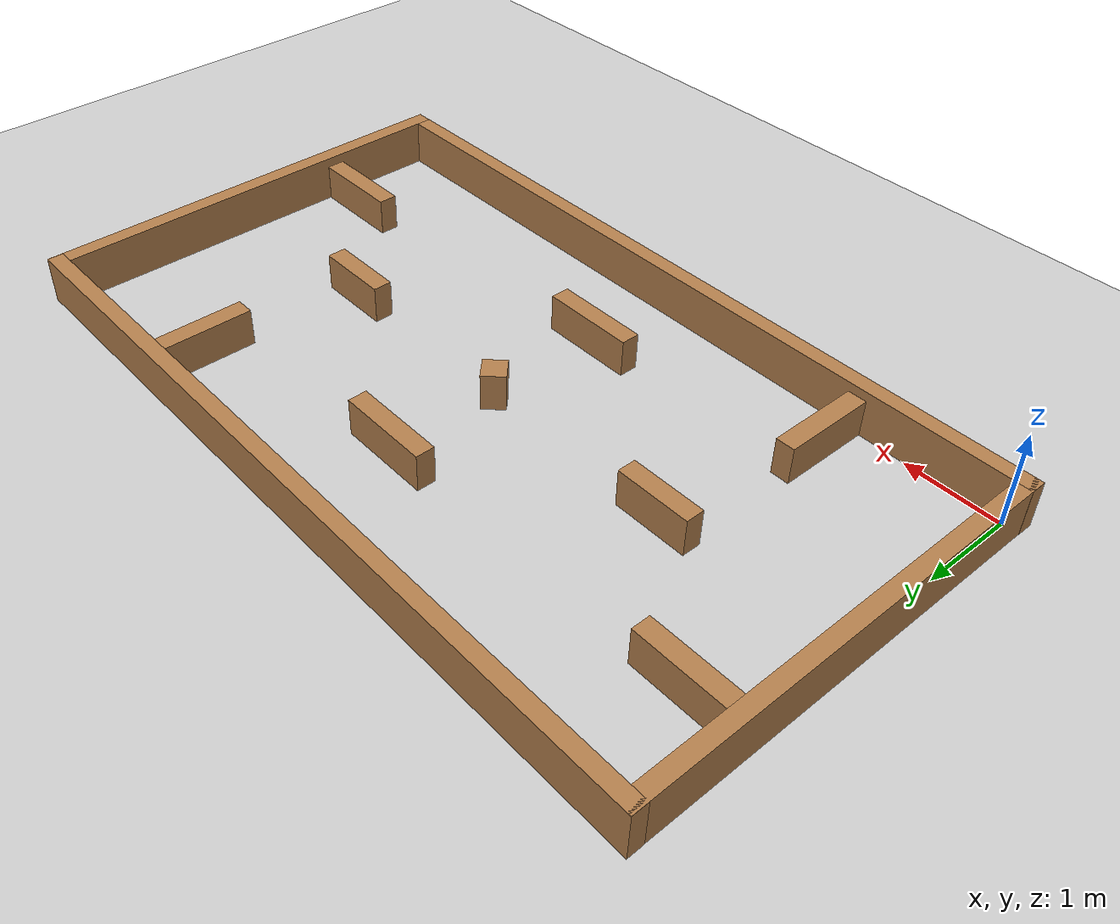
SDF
<sdf version='1.6'>
  <world name='default'>
    <!-- A global light source -->
    <include>
      <uri>model://sun</uri>
    </include>

    <!-- A ground plane -->
    <include>
      <uri>model://ground_plane</uri>
    </include>

    <physics type="ode">
      <real_time_update_rate>1000.0</real_time_update_rate>
      <max_step_size>0.003</max_step_size>
      <real_time_factor>1</real_time_factor>
      <ode>
        <solver>
          <type>quick</type>
          <iters>150</iters>
          <precon_iters>0</precon_iters>
          <sor>1.400000</sor>
          <use_dynamic_moi_rescaling>1</use_dynamic_moi_rescaling>
        </solver>
        <constraints>
          <cfm>0.00001</cfm>
          <erp>0.2</erp>
          <contact_max_correcting_vel>2000.000000</contact_max_correcting_vel>
          <contact_surface_layer>0.01000</contact_surface_layer>
        </constraints>
      </ode>
    </physics>

    <!-- Load world -->
    <include>
      <uri>model://ICRA2020_square</uri>
    </include>

    <scene>
      <ambient>0.4 0.4 0.4 1</ambient>
      <background>0.7 0.7 0.7 1</background>
      <shadows>true</shadows>
    </scene>

    <gui fullscreen='0'>
      <camera name='user_camera'>
        <pose>0.0 0.0 17.0 0 1.5708 0</pose>
        <view_controller>orbit</view_controller>
      </camera>
    </gui>
  </world>
</sdf>

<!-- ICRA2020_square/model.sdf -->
<sdf version='1.6'>
  <model name='turtlebot3_square'>
    <pose frame=''>0 0 0 0 -0 0</pose>
    <link name='Wall_0'>
      <collision name='Wall_0_Collision'>
        <geometry>
          <box>
            <size>8.42 0.17 0.5</size>
          </box>
        </geometry>
        <pose frame=''>0 0 0.25 0 -0 0</pose>
      </collision>
      <visual name='Wall_0_Visual'>
        <pose frame=''>0 0 0.25 0 -0 0</pose>
        <geometry>
          <box>
            <size>8.42 0.17 0.5</size>
          </box>
        </geometry>
        <material>
          <script>
            <uri>file://media/materials/scripts/gazebo.material</uri>
            <name>Gazebo/Wood</name>
          </script>
          <ambient>1 1 1 1</ambient>
        </material>
      </visual>
      <pose frame=''>4.04 4.5675 0 0 -0 0</pose>
    </link>
    <link name='Wall_2'>
      <collision name='Wall_2_Collision'>
        <geometry>
          <box>
            <size>4.82 0.17 0.5</size>
          </box>
        </geometry>
        <pose frame=''>0 0 0.25 0 -0 0</pose>
      </collision>
      <visual name='Wall_2_Visual'>
        <pose frame=''>0 0 0.25 0 -0 0</pose>
        <geometry>
          <box>
            <size>4.82 0.17 0.5</size>
          </box>
        </geometry>
        <material>
          <script>
            <uri>file://media/materials/scripts/gazebo.material</uri>
            <name>Gazebo/Wood</name>
          </script>
          <ambient>1 1 1 1</ambient>
        </material>
      </visual>
      <pose frame=''>-0.0825 2.24 0 0 0 -1.5708</pose>
    </link>
    <link name='Wall_3'>
      <collision name='Wall_3_Collision'>
        <geometry>
          <box>
            <size>8.42 0.17 0.5</size>
          </box>
        </geometry>
        <pose frame=''>0 0 0.25 0 -0 0</pose>
      </collision>
      <visual name='Wall_3_Visual'>
        <pose frame=''>0 0 0.25 0 -0 0</pose>
        <geometry>
          <box>
            <size>8.42 0.17 0.5</size>
          </box>
        </geometry>
        <material>
          <script>
            <uri>file://media/materials/scripts/gazebo.material</uri>
            <name>Gazebo/Wood</name>
          </script>
          <ambient>1 1 1 1</ambient>
        </material>
      </visual>
      <pose frame=''>4.04 -0.085 0 0 -0 0</pose>
    </link>
    <link name='Wall_4'>
      <collision name='Wall_4_Collision'>
        <geometry>
          <box>
            <size>4.82 0.17 0.5</size>
          </box>
        </geometry>
        <pose frame=''>0 0 0.25 0 -0 0</pose>
      </collision>
      <visual name='Wall_4_Visual'>
        <pose frame=''>0 0 0.25 0 -0 0</pose>
        <geometry>
          <box>
            <size>4.82 0.17 0.5</size>
          </box>
        </geometry>
        <material>
          <script>
            <uri>file://media/materials/scripts/gazebo.material</uri>
            <name>Gazebo/Wood</name>
          </script>
          <ambient>1 1 1 1</ambient>
        </material>
      </visual>
      <pose frame=''>8.17 2.24 0 0 -0 1.5708</pose>
    </link>
    <link name='B1'>
          <collision name='B1_Collision'>
            <geometry>
              <box>
                <size>1 0.2 0.4</size>
              </box>
            </geometry>
            <pose frame=''>0 0 0.2 0 -0 0</pose>
          </collision>
          <visual name='B1_Visual'>
            <pose frame=''>0 0 0.2 0 -0 0</pose>
            <geometry>
              <box>
                <size>1 0.2 0.4</size>
              </box>
            </geometry>
            <material>
              <script>
                <uri>file://media/materials/scripts/gazebo.material</uri>
                <name>Gazebo/Wood</name>
              </script>
              <ambient>1 1 1 1</ambient>
            </material>
          </visual>
          <pose frame=''>0.5 3.38 0 0 -0 0</pose>
        </link>
    <link name='B2'>
          <collision name='B2_Collision'>
            <geometry>
              <box>
                <size>0.8 0.2 0.4</size>
              </box>
            </geometry>
            <pose frame=''>0 0 0.2 0 -0 0</pose>
          </collision>
          <visual name='B2_Visual'>
            <pose frame=''>0 0 0.2 0 -0 0</pose>
            <geometry>
              <box>
                <size>0.8 0.2 0.4</size>
              </box>
            </geometry>
            <material>
              <script>
                <uri>file://media/materials/scripts/gazebo.material</uri>
                <name>Gazebo/Wood</name>
              </script>
              <ambient>1 1 1 1</ambient>
            </material>
          </visual>
          <pose frame=''>1.9 2.24 0 0 -0 0</pose>
        </link>
        <link name='B3'>
          <collision name='B3_Collision'>
            <geometry>
              <box>
                <size>1 0.2 0.4</size>
              </box>
            </geometry>
            <pose frame=''>0 0 0.2 0 -0 0</pose>
          </collision>
          <visual name='B3_Visual'>
            <pose frame=''>0 0 0.2 0 -0 0</pose>
            <geometry>
              <box>
                <size>1 0.2 0.4</size>
              </box>
            </geometry>
            <material>
              <script>
                <uri>file://media/materials/scripts/gazebo.material</uri>
                <name>Gazebo/Wood</name>
              </script>
              <ambient>1 1 1 1</ambient>
            </material>
          </visual>
          <pose frame=''>1.6 0.5 0 0 -0 1.5708</pose>
        </link>
         <link name='B4'>
          <collision name='B4_Collision'>
            <geometry>
              <box>
                <size>1 0.2 0.4</size>
              </box>
            </geometry>
            <pose frame=''>0 0 0.2 0 -0 0</pose>
          </collision>
          <visual name='B4_Visual'>
            <pose frame=''>0 0 0.2 0 -0 0</pose>
            <geometry>
              <box>
                <size>1 0.2 0.4</size>
              </box>
            </geometry>
            <material>
              <script>
                <uri>file://media/materials/scripts/gazebo.material</uri>
                <name>Gazebo/Wood</name>
              </script>
              <ambient>1 1 1 1</ambient>
            </material>
          </visual>
          <pose frame=''> 4.04 3.445 0 -0 0 0</pose>
        </link>
        <link name='B5'>
          <collision name='B5_Collision'>
            <geometry>
              <box>
                <size>0.25 0.25 0.4</size>
              </box>
            </geometry>
            <pose frame=''>0 0 0.2 0 -0 0</pose>
          </collision>
          <visual name='B5_Visual'>
            <pose frame=''>0 0 0.2 0 -0 0</pose>
            <geometry>
              <box>
                <size>0.25 0.25 0.4</size>
              </box>
            </geometry>
            <material>
              <script>
                <uri>file://media/materials/scripts/gazebo.material</uri>
                <name>Gazebo/Wood</name>
              </script>
              <ambient>1 1 1 1</ambient>
            </material>
          </visual>
          <pose frame=''>4.04 2.24 0 0 -0 0.7854</pose>
        </link>
        <link name='B6'>
          <collision name='B6_Collision'>
            <geometry>
              <box>
                <size>1 0.2 0.4</size>
              </box>
            </geometry>
            <pose frame=''>0 0 0.2 0 -0 0</pose>
          </collision>
          <visual name='B6_Visual'>
            <pose frame=''>0 0 0.2 0 -0 0</pose>
            <geometry>
              <box>
                <size>1 0.2 0.4</size>
              </box>
            </geometry>
            <material>
              <script>
                <uri>file://media/materials/scripts/gazebo.material</uri>
                <name>Gazebo/Wood</name>
              </script>
              <ambient>1 1 1 1</ambient>
            </material>
          </visual>
          <pose frame=''> 4.04 0.955 0 -0 0 0</pose>
        </link>
        <link name='B7'>
          <collision name='B7_Collision'>
            <geometry>
              <box>
                <size>1 0.2 0.4</size>
              </box>
            </geometry>
            <pose frame=''>0 0 0.2 0 -0 0</pose>
          </collision>
          <visual name='B7_Visual'>
            <pose frame=''>0 0 0.2 0 -0 0</pose>
            <geometry>
              <box>
                <size>1 0.2 0.4</size>
              </box>
            </geometry>
            <material>
              <script>
                <uri>file://media/materials/scripts/gazebo.material</uri>
                <name>Gazebo/Wood</name>
              </script>
              <ambient>1 1 1 1</ambient>
            </material>
          </visual>
          <pose frame=''> 6.38 3.98 0 -0 0 1.5708</pose>
        </link>
        <link name='B8'>
          <collision name='B8_Collision'>
            <geometry>
              <box>
                <size>0.8 0.2 0.4</size>
              </box>
            </geometry>
            <pose frame=''>0 0 0.2 0 -0 0</pose>
          </collision>
          <visual name='B8_Visual'>
            <pose frame=''>0 0 0.2 0 -0 0</pose>
            <geometry>
              <box>
                <size>0.8 0.2 0.4</size>
              </box>
            </geometry>
            <material>
              <script>
                <uri>file://media/materials/scripts/gazebo.material</uri>
                <name>Gazebo/Wood</name>
              </script>
              <ambient>1 1 1 1</ambient>
            </material>
          </visual>
          <pose frame=''>6.18 2.24 0 0 -0 0</pose>
        </link>
        <link name='B9'>
          <collision name='B9_Collision'>
            <geometry>
              <box>
                <size>1 0.2 0.4</size>
              </box>
            </geometry>
            <pose frame=''>0 0 0.2 0 -0 0</pose>
          </collision>
          <visual name='B9_Visual'>
            <pose frame=''>0 0 0.2 0 -0 0</pose>
            <geometry>
              <box>
                <size>1 0.2 0.4</size>
              </box>
            </geometry>
            <material>
              <script>
                <uri>file://media/materials/scripts/gazebo.material</uri>
                <name>Gazebo/Wood</name>
              </script>
              <ambient>1 1 1 1</ambient>
            </material>
          </visual>
          <pose frame=''> 7.58 1.2 0 -0 0 0</pose>
        </link>

    <static>1</static>
  </model>
</sdf>
